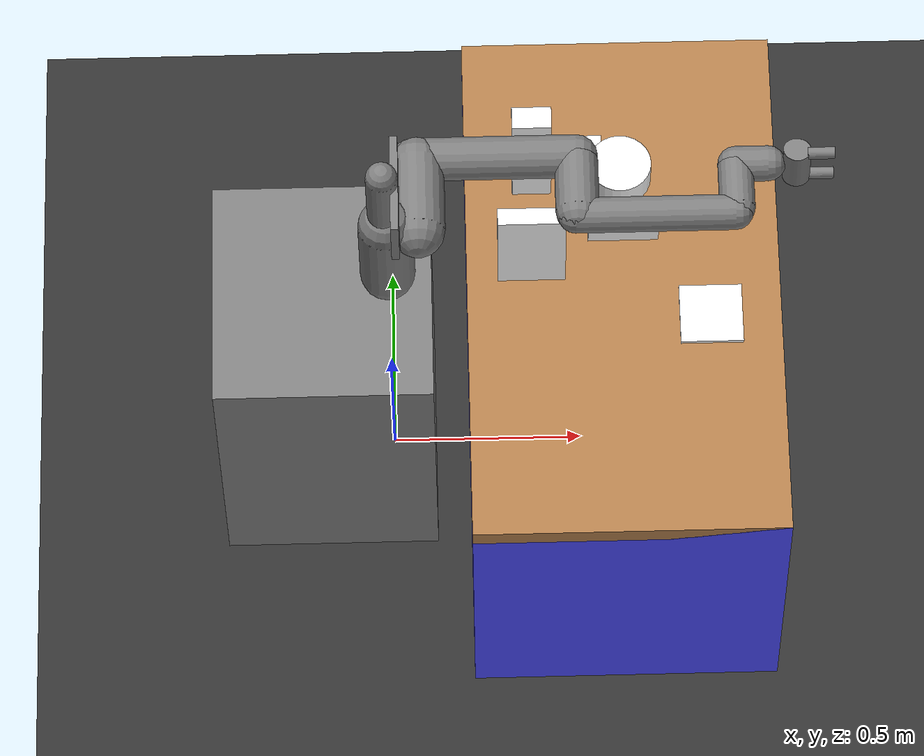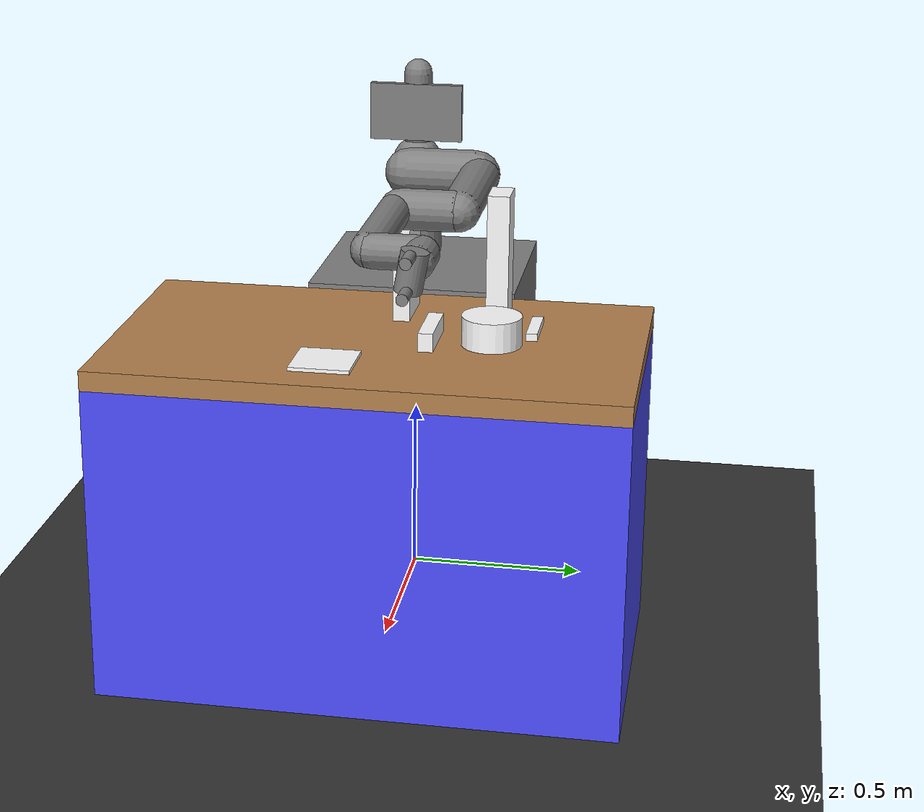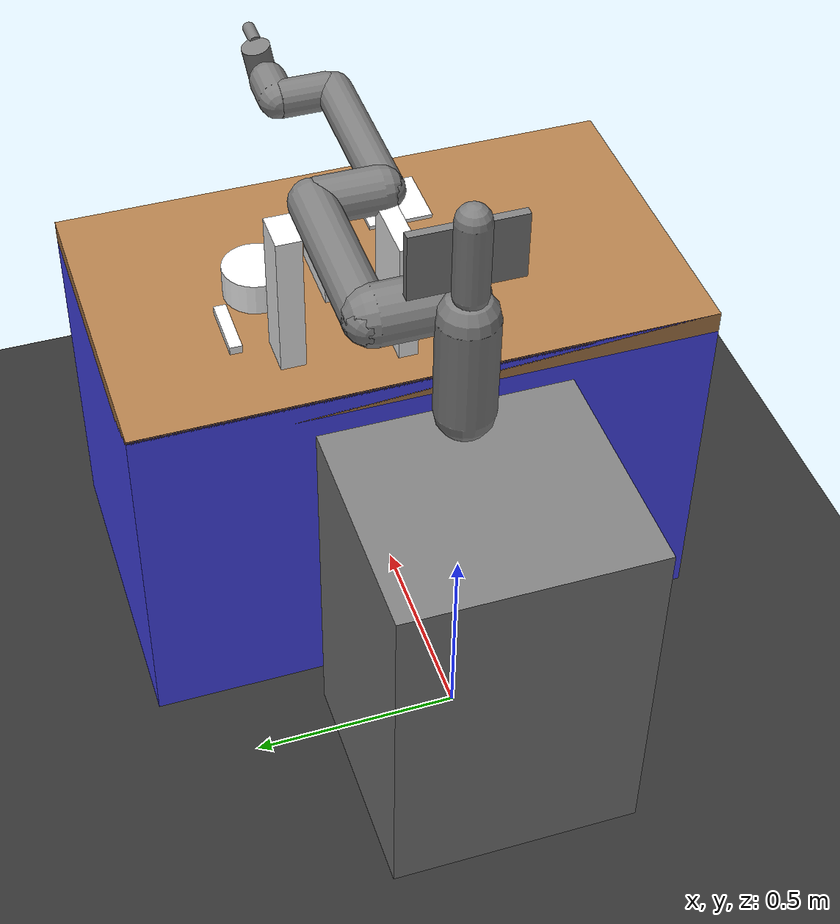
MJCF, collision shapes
<?xml version='1.0' encoding='utf-8'?>
<mujoco model="mesatask_breakfast_me_optimized">
  <compiler angle="radian" coordinate="local"/>
  <option timestep="0.002" gravity="0 0 -9.81" impratio="10" />

  <!-- Higher friction to prevent sliding/spinning; stiffer contacts to prevent sinking into table -->
  <default>
    <geom friction="3.0 0.1 0.01" solref="0.005 1" solimp="0.99 0.999 0.001" condim="4" />
  </default>
  <include file="sawyer-gripper.xml" />

  <asset>
    <mesh name="mesh_0_a430d997_0564_4fae_801b_c01693feeee6" file="../../scene_003/assets/meshes/a430d997-0564-4fae-801b-c01693feeee6.obj" scale="0.093618 0.093601 0.093817" />
    <texture name="tex_0_a430d997_0564_4fae_801b_c01693feeee6__Material_315" type="2d" file="scene_003/assets/textures/a430d997-0564-4fae-801b-c01693feeee6__Material.315.png" />
    <material name="mat_0_a430d997_0564_4fae_801b_c01693feeee6__Material_315_Material_315" texture="tex_0_a430d997_0564_4fae_801b_c01693feeee6__Material_315" rgba="1 1 1 1" specular="0.2" shininess="0.2" />
    <mesh name="mesh_1_1cd24fb39eb340b28b7a0ce00e6d3c6a" file="../../scene_003/assets/meshes/1cd24fb39eb340b28b7a0ce00e6d3c6a.obj" scale="0.022297 0.022666 0.015407" />
    <texture name="tex_1_1cd24fb39eb340b28b7a0ce00e6d3c6a__Material_097" type="2d" file="scene_003/assets/textures/1cd24fb39eb340b28b7a0ce00e6d3c6a__Material.097.png" />
    <material name="mat_1_1cd24fb39eb340b28b7a0ce00e6d3c6a__Material_097_Material_097" texture="tex_1_1cd24fb39eb340b28b7a0ce00e6d3c6a__Material_097" rgba="1 1 1 1" specular="0.2" shininess="0.2" />
    <mesh name="mesh_2_d147f73d5f2249a7ba169a1cf0c21e95" file="../../scene_003/assets/meshes/d147f73d5f2249a7ba169a1cf0c21e95.obj" scale="0.000103 0.000105 0.000100" />
    <texture name="tex_2_d147f73d5f2249a7ba169a1cf0c21e95__Default_003" type="2d" file="scene_003/assets/textures/d147f73d5f2249a7ba169a1cf0c21e95__Default.003.png" />
    <material name="mat_2_d147f73d5f2249a7ba169a1cf0c21e95__Default_003_Default_003" texture="tex_2_d147f73d5f2249a7ba169a1cf0c21e95__Default_003" rgba="1 1 1 1" specular="0.2" shininess="0.2" />
    <mesh name="mesh_3_98c9fc6a50414f68979318c693fe25f8" file="../../scene_003/assets/meshes/98c9fc6a50414f68979318c693fe25f8.obj" scale="0.026422 0.026255 0.027233" />
    <texture name="tex_3_98c9fc6a50414f68979318c693fe25f8__material_0" type="2d" file="scene_003/assets/textures/98c9fc6a50414f68979318c693fe25f8__material_0.png" />
    <material name="mat_3_98c9fc6a50414f68979318c693fe25f8__material_0_material_0" texture="tex_3_98c9fc6a50414f68979318c693fe25f8__material_0" rgba="1 1 1 1" specular="0.2" shininess="0.2" />
    <mesh name="mesh_4_cfd0a5186de3408cbb6fbde0cd6144ce" file="../../scene_003/assets/meshes/cfd0a5186de3408cbb6fbde0cd6144ce.obj" scale="0.943112 0.918831 0.936056" />
    <texture name="tex_4_cfd0a5186de3408cbb6fbde0cd6144ce__Material_004" type="2d" file="scene_003/assets/textures/cfd0a5186de3408cbb6fbde0cd6144ce__Material.004.png" />
    <material name="mat_4_cfd0a5186de3408cbb6fbde0cd6144ce__Material_004_Material_004" texture="tex_4_cfd0a5186de3408cbb6fbde0cd6144ce__Material_004" rgba="1 1 1 1" specular="0.2" shininess="0.2" />
    <mesh name="mesh_5_8ce748cf2f4a410181650550275650b1" file="../../scene_003/assets/meshes/8ce748cf2f4a410181650550275650b1.obj" scale="0.100000 0.100000 0.060570" />
    <texture name="tex_5_8ce748cf2f4a410181650550275650b1__lambert1_011" type="2d" file="scene_003/assets/textures/8ce748cf2f4a410181650550275650b1__lambert1.011.png" />
    <material name="mat_5_8ce748cf2f4a410181650550275650b1__lambert1_011_lambert1_011" texture="tex_5_8ce748cf2f4a410181650550275650b1__lambert1_011" rgba="1 1 1 1" specular="0.2" shininess="0.2" />
  </asset>

  <asset>
      <texture name="T_table" type="cube" file="textures/wood2.png" />
      <texture name="T_floor" type="2d" file="textures/floor2.png" />

      <material name="table_wood" texture="T_table" shininess=".3" specular="0.5" />
      <material name="table_col" rgba="0.3 0.3 1.0 0.5" shininess="0" specular="0" />

      <mesh file="../meshes/table/tablebody.stl" name="tablebody" scale="1 1 1"/>
      <mesh file="../meshes/table/tabletop.stl" name="tabletop" scale="1 1 1"/>
  </asset>

  <worldbody>
    <light name="key_light" pos="1.2 1.0 2.0" dir="-1 -1 -1" directional="true" diffuse="0.95 0.95 0.95" specular="0.25 0.25 0.25" castshadow="true" />
    <light name="fill_light" pos="-1.0 0.6 1.5" dir="1 -0.2 -1" directional="true" diffuse="0.45 0.45 0.45" specular="0.05 0.05 0.05" castshadow="false" />
    <geom name="ground" type="plane" size="2 2 0.1" pos="0 0 -0.001" rgba="0.2 0.2 0.2 1" />
    <body name="tablelink" pos="0.6 0 0.915" euler="0 0 1.5708">
      <geom name="tablelink" material="table_wood" group="1" type="box" size=".7 .4 .027" pos="0 0 -.027" conaffinity="0" contype="0" />
      <geom name="tablebody" material="table_wood" group="1" mesh="tablebody" pos="0 0 -0.65" type="mesh" conaffinity="0" contype="0" />
      <geom name="tabletop" material="table_col" group="4" pos="0.0 0.0 -0.46" size="0.7 0.4 0.46" type="box" conaffinity="1" contype="1" />
    </body>
    <body name="bowl_0_a430d997_0564_4fae_801b_c01693feeee6" pos="0.600 0.300 0.955" quat="1.000000 0.000000 0.000000 0.000000">
      <freejoint/>
      <inertial pos="0 0 0" mass="0.3" diaginertia="0.001 0.001 0.001"/>
      <geom type="mesh" mesh="mesh_0_a430d997_0564_4fae_801b_c01693feeee6" quat="0.707107 0.707107 0.000000 0.000000" material="mat_0_a430d997_0564_4fae_801b_c01693feeee6__Material_315_Material_315" contype="0" conaffinity="0" />
      <geom name="bowl_box" type="cylinder" size="0.08 0.04" rgba="1 1 1 0" contype="1" conaffinity="1" />
    </body>
    <!-- Cereal: scaled to 80%. Collision box matches scaled visual mesh.
         body_z = 0.915 + 0.1528 = 1.0678. -->
    <body name="cereal_0_1cd24fb39eb340b28b7a0ce00e6d3c6a" pos="0.366 0.033 1.068" quat="1.000000 0.000000 0.000000 0.000000">
      <freejoint/>
      <inertial pos="0 0 0" mass="0.4" diaginertia="0.003 0.003 0.003"/>
      <geom type="mesh" mesh="mesh_1_1cd24fb39eb340b28b7a0ce00e6d3c6a" quat="0.707107 0.707107 0.000000 0.000000" material="mat_1_1cd24fb39eb340b28b7a0ce00e6d3c6a__Material_097_Material_097" contype="0" conaffinity="0" />
      <geom name="cereal_box" type="box" size="0.086 0.023 0.153" rgba="1 1 1 0" contype="1" conaffinity="1" friction="8.0 0.005 0.0001" />
    </body>
    <body name="napkin_0_d147f73d5f2249a7ba169a1cf0c21e95" pos="0.820 -0.100 0.920" quat="1.000000 0.000000 0.000000 0.000000">
      <freejoint/>
      <inertial pos="0 0 0" mass="0.05" diaginertia="0.0005 0.0005 0.0005"/>
      <geom type="mesh" mesh="mesh_2_d147f73d5f2249a7ba169a1cf0c21e95" quat="0.707107 0.707107 0.000000 0.000000" material="mat_2_d147f73d5f2249a7ba169a1cf0c21e95__Default_003_Default_003" contype="0" conaffinity="0" />
      <geom name="napkin_box" type="box" size="0.08 0.08 0.005" rgba="1 1 1 0" contype="1" conaffinity="1" />
    </body>
    <body name="spoon_0_98c9fc6a50414f68979318c693fe25f8" pos="0.480 0.400 0.925" quat="1.000000 0.000000 0.000000 0.000000">
      <freejoint/>
      <inertial pos="0 0 0" mass="0.05" diaginertia="0.0005 0.0005 0.0005"/>
      <geom type="mesh" mesh="mesh_3_98c9fc6a50414f68979318c693fe25f8" quat="0.707107 0.707107 0.000000 0.000000" material="mat_3_98c9fc6a50414f68979318c693fe25f8__material_0_material_0" contype="0" conaffinity="0" />
      <geom name="spoon_box" type="box" size="0.075 0.015 0.01" rgba="1 1 1 0" contype="1" conaffinity="1" />
    </body>
    <body name="banana_0_cfd0a5186de3408cbb6fbde0cd6144ce" pos="0.603 0.139 0.940" quat="1.000000 0.000000 0.000000 0.000000">
      <freejoint/>
      <inertial pos="0 0 0" mass="0.12" diaginertia="0.001 0.001 0.001"/>
      <geom type="mesh" mesh="mesh_4_cfd0a5186de3408cbb6fbde0cd6144ce" quat="0.707107 0.707107 0.000000 0.000000" material="mat_4_cfd0a5186de3408cbb6fbde0cd6144ce__Material_004_Material_004" contype="0" conaffinity="0" />
      <geom name="banana_box" type="box" size="0.09 0.02 0.025" rgba="1 1 1 0" contype="1" conaffinity="1" friction="8.0 0.005 0.0001" />
    </body>
    <!-- Milk: scaled to 80%. Collision box matches scaled visual mesh.
         body_z = 0.915 + 0.176 = 1.091. -->
    <body name="milk_carton_0_8ce748cf2f4a410181650550275650b1" pos="0.372 0.289 1.091" quat="1.000000 0.000000 0.000000 0.000000">
      <freejoint/>
      <inertial pos="0 0 -0.03" mass="0.8" diaginertia="0.005 0.005 0.005"/>
      <geom type="mesh" mesh="mesh_5_8ce748cf2f4a410181650550275650b1" quat="0.707107 0.707107 0.000000 0.000000" material="mat_5_8ce748cf2f4a410181650550275650b1__lambert1_011_lambert1_011" contype="0" conaffinity="0" />
      <geom name="milk_box" type="box" size="0.050 0.030 0.176" rgba="1 1 1 0" contype="1" conaffinity="1" friction="8.0 0.005 0.0001" />
    </body>
  </worldbody>
  <!-- Initial robot configuration so the arm doesn't sweep through objects on startup.
       qpos order: right_j0..j6 (7), gripper (2), then 7 freejoint bodies x 7 qpos each (pos+quat) = 42 -->
  <keyframe>
    <key name="home" qpos="0 -1.1775 0 2.1761 0 0.5663 3.3124 0 0
      0.6 0.3 0.955 1 0 0 0
      0.365552 0.0333248 1.068 1 0 0 0
      0.82 -0.1 0.92 1 0 0 0
      0.48 0.4 0.925 1 0 0 0
      0.603376 0.139231 0.94 1 0 0 0
      0.37233 0.28934 1.091 1 0 0 0"/>
  </keyframe>

  <visual>
    <global offwidth="1280" offheight="960" />
    <quality shadowsize="4096" />
    <headlight ambient="0.30 0.30 0.30" diffuse="0.75 0.75 0.75" specular="0.15 0.15 0.15" />
    <map znear="0.01" zfar="50" />
  </visual>
</mujoco>

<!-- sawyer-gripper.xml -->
<mujoco model="sawyer">
  <compiler angle="radian" meshdir="sawyer/assets" autolimits="true"/>

  <option integrator="implicitfast"/>

  <default>
    <default class="sawyer">
      <material specular="0.5" shininess="0.25"/>
      <joint axis="0 0 1"/>
      <general dyntype="none" biastype="affine"/>
      <default class="visual">
        <geom group="2" type="mesh" contype="0" conaffinity="0"/>
      </default>
      <default class="collision">
        <geom group="3" type="capsule" rgba="0.5 0.5 0.5 1"/>
        <default class="eef_collision">
          <geom type="cylinder"/>
        </default>
      </default>
      <site size="0.001" rgba="0.5 0.5 0.5 0.3" group="4"/>

      <default class="large_joint">
        <joint frictionloss="0.3" armature="1" damping="0.1"/>
        <general gainprm="800" biasprm="0 -800 -80" forcerange="-200 200"/>
      </default>
      <default class="medium_joint">
        <joint frictionloss="0.3" armature="1" damping="0.1"/>
        <general gainprm="800" biasprm="0 -800 -80" forcerange="-100 100"/>
      </default>
      <default class="small_joint">
        <joint frictionloss="0.1" armature="1" damping="0.1"/>
        <general gainprm="500" biasprm="0 -500 -50" forcerange="-30 30"/>
      </default>
      <default class="gripper_joint">
        <joint frictionloss="0.1" armature="0.5" damping="0.5"/>
        <general gainprm="1000" biasprm="0 -200 -20" forcerange="-50 50"/>
      </default>
    </default>
  </default>

  <asset>
    <material class="sawyer" name="red" rgba="0.5 0.1 0.1 1"/>
    <material class="sawyer" name="black" rgba="0.2 0.2 0.2 1"/>
    <material class="sawyer" name="white" rgba="1 1 1 1"/>
    <material class="sawyer" name="off_white" rgba="0.792157 0.819608 0.929412 1"/>
    <material class="sawyer" name="Mtl3" rgba="0.168627 0.152941 0.141176 1"/>
    <material class="sawyer" name="Mtl4" rgba="1 0.403922 0.121569 1"/>
    <material class="sawyer" name="Mtl7" rgba="0.250980 0.250980 0.250980 1"/>
    <material class="sawyer" name="dark_black" specular="0.0" shininess="0.25" rgba="0 0 0 1"/>
    <material class="sawyer" name="Mtl5.001" rgba="0.870588 0.309804 0.086275 1"/>
    <material class="sawyer" name="Mtl7.001" rgba="0.698039 0.698039 0.698039 1"/>
    <material class="sawyer" name="Mtl5.002" rgba="0.105882 0.105882 0.105882 1"/>
    <material class="sawyer" name="Mtl6.002" rgba="0.749020 0.749020 0.749020 1"/>
    <material class="sawyer" name="Mtl4_001" rgba="0.866667 0.905882 1 1"/>
    <material class="sawyer" name="Mtl5_001" rgba="0.501961 0.501961 0.501961 1"/>

    <mesh file="pedestal.obj"/>
    <mesh file="base_0.obj"/>
    <mesh file="base_1.obj"/>
    <mesh file="l0_0.obj"/>
    <mesh file="l0_1.obj"/>
    <mesh file="l0_2.obj"/>
    <mesh file="l0_3.obj"/>
    <mesh file="l0_4.obj"/>
    <mesh file="l0_5.obj"/>
    <mesh file="l0_6.obj"/>
    <mesh file="l1_0.obj"/>
    <mesh file="l1_1.obj"/>
    <mesh file="l1_2.obj"/>
    <mesh file="l2_0.obj"/>
    <mesh file="l2_1.obj"/>
    <mesh file="l2_2.obj"/>
    <mesh file="l2_3.obj"/>
    <mesh file="l2_4.obj"/>
    <mesh file="l3_0.obj"/>
    <mesh file="l3_1.obj"/>
    <mesh file="l3_2.obj"/>
    <mesh file="l3_3.obj"/>
    <mesh file="l4_0.obj"/>
    <mesh file="l4_1.obj"/>
    <mesh file="l4_2.obj"/>
    <mesh file="l4_3.obj"/>
    <mesh file="l4_4.obj"/>
    <mesh file="l4_5.obj"/>
    <mesh file="l4_6.obj"/>
    <mesh file="l4_7.obj"/>
    <mesh file="l5_0.obj"/>
    <mesh file="l5_1.obj"/>
    <mesh file="l5_2.obj"/>
    <mesh file="l5_3.obj"/>
    <mesh file="l5_4.obj"/>
    <mesh file="l6_0.obj"/>
    <mesh file="l6_1.obj"/>
    <mesh file="l6_2.obj"/>
    <mesh file="l6_3.obj"/>
    <mesh file="l6_4.obj"/>
    <mesh file="l6_5.obj"/>
    <mesh file="head_0.obj"/>
    <mesh file="head_2.obj"/>
    <mesh file="head_3.obj"/>
    <mesh file="head_5.obj"/>
    <mesh file="head_6.obj"/>
    <mesh file="head_7.obj"/>
    <mesh file="head_8.obj"/>
    <mesh file="head_9.obj"/>
    <mesh file="gripper_body.obj"/>
    <mesh file="gripper_finger_narrow.obj"/>
  </asset>

  <worldbody>
    <light name="top" pos="0 0 2" mode="trackcom"/>
    <body name="pedestal">
      <geom mesh="pedestal" material="black" class="visual"/>
      <geom class="collision" type="box" pos="-0.17 0 0.45" size="0.28 0.3 0.45"/>
      <body name="base" childclass="sawyer" pos="0 0 0.92">
        <inertial mass="2.0687" pos="-0.0006241 -2.8025E-05 0.065404"
          fullinertia="0.0067599 0.0067877 0.0074031 -4.2024E-05 -6.1904E-07 1.5888E-05"/>
        <geom mesh="base_0" material="black" class="visual"/>
        <geom mesh="base_1" material="red" class="visual"/>
        <body name="right_l0" pos="0 0 0.08">
          <inertial mass="5.3213" pos="0.0243645 0.0109688 0.143631" quat="0.894821 0.0089945 -0.17028 0.412576"
            diaginertia="0.0651599 0.0510954 0.0186221"/>
          <joint name="right_j0" class="large_joint" range="-3.0503 3.0503"/>
          <geom mesh="l0_0" material="Mtl7" class="visual"/>
          <geom mesh="l0_1" material="off_white" class="visual"/>
          <geom mesh="l0_2" material="red" class="visual"/>
          <geom mesh="l0_3" material="Mtl4" class="visual"/>
          <geom mesh="l0_4" material="Mtl3" class="visual"/>
          <geom mesh="l0_5" material="white" class="visual"/>
          <geom mesh="l0_6" material="black" class="visual"/>
          <geom class="collision" fromto="0 0 -0.005 0 0 0.25" size="0.07"/>
          <body name="head" pos="0 0 0.2965">
            <inertial mass="1.5795" pos="0.00532226 -2.65473e-05 0.1021"
              quat="0.999993 7.08384e-05 -0.00359812 -0.000626267" diaginertia="0.0118334 0.00827097 0.00496582"/>
            <geom mesh="head_0" material="black" class="visual"/>
            <geom mesh="head_2" material="off_white" class="visual"/>
            <geom mesh="head_3" material="Mtl7" class="visual"/>
            <geom mesh="head_5" material="black" class="visual"/>
            <geom mesh="head_6" material="white" class="visual"/>
            <geom mesh="head_7" material="dark_black" class="visual"/>
            <geom mesh="head_8" material="red" class="visual"/>
            <geom mesh="head_9" material="Mtl5.001" class="visual"/>
            <geom class="collision" fromto="-0.005 0 0.02 -0.005 0 0.205" size="0.04"/>
            <geom class="collision" type="box" pos="0.025 0 0.1" size="0.01 0.13 0.08"/>
          </body>
          <body name="right_l1" pos="0.081 0.05 0.237" quat="1 -1 1 1">
            <inertial mass="4.505" pos="-0.0030849 -0.026811 0.092521" quat="0.424888 0.891987 0.132364 -0.0794294"
              diaginertia="0.0224339 0.0221624 0.00970971"/>
            <joint name="right_j1" class="large_joint" range="-3.8095 2.2736"/>
            <geom mesh="l1_0" material="black" class="visual"/>
            <geom mesh="l1_1" material="red" class="visual"/>
            <geom mesh="l1_2" material="white" class="visual"/>
            <geom class="collision" fromto="0 0 -0.06 0 0 0.13" size="0.068"/>
            <body name="right_l2" pos="0 -0.14 0.1425" quat="1 1 0 0">
              <inertial mass="1.745" pos="-0.00016044 -0.014967 0.13582" quat="0.707831 -0.0524761 0.0516006 0.702537"
                diaginertia="0.0257928 0.025506 0.00292516"/>
              <joint name="right_j2" class="medium_joint" range="-3.0426 3.0426"/>
              <geom mesh="l2_0" material="off_white" class="visual"/>
              <geom mesh="l2_1" material="Mtl5.002" class="visual"/>
              <geom mesh="l2_2" material="white" class="visual"/>
              <geom mesh="l2_3" material="black" class="visual"/>
              <geom mesh="l2_4" material="red" class="visual"/>
              <geom class="collision" fromto="0 0 -0.15 0 0 0.26" size="0.055"/>
              <body name="right_l3" pos="0 -0.042 0.26" quat="1 -1 0 0">
                <inertial mass="2.5097" pos="-0.0048135 -0.0281 -0.084154" quat="0.902999 0.385391 -0.0880901 0.168247"
                  diaginertia="0.0102404 0.0096997 0.00369622"/>
                <joint name="right_j3" class="medium_joint" range="-3.0439 3.0439"/>
                <geom mesh="l3_0" material="off_white" class="visual"/>
                <geom mesh="l3_1" material="red" class="visual"/>
                <geom mesh="l3_2" material="white" class="visual"/>
                <geom mesh="l3_3" material="black" class="visual"/>
                <geom class="collision" fromto="0 0 -0.115 0 0 0.03" size="0.055"/>
                <body name="right_l4" pos="0 -0.125 -0.1265" quat="1 1 0 0">
                  <inertial mass="1.1136" pos="-0.00188917 0.00689948 0.134095"
                    quat="0.803247 0.031244 -0.0298409 0.594077" diaginertia="0.0136555 0.0135498 0.00127385"/>
                  <joint name="right_j4" class="small_joint" range="-2.9761 2.9761"/>
                  <geom mesh="l4_0" material="Mtl7" class="visual"/>
                  <geom mesh="l4_1" material="black" class="visual"/>
                  <geom mesh="l4_2" material="Mtl6.002" class="visual"/>
                  <geom mesh="l4_3" material="white" class="visual"/>
                  <geom mesh="l4_4" material="off_white" class="visual"/>
                  <geom mesh="l4_5" material="dark_black" class="visual"/>
                  <geom mesh="l4_6" material="red" class="visual"/>
                  <geom mesh="l4_7" material="black" class="visual"/>
                  <geom class="collision" fromto="0 0 -0.13 0 0 0.27" size="0.045"/>
                  <body name="right_l5" pos="0 0.031 0.275" quat="1 -1 0 0">
                    <inertial mass="1.5625" pos="0.0061133 -0.023697 0.076416" quat="0.404076 0.9135 0.0473125 0.00158335"
                      diaginertia="0.00474131 0.00422857 0.00190672"/>
                    <joint name="right_j5" class="small_joint" range="-2.9761 2.9761"/>
                    <geom mesh="l5_0" material="Mtl5_001" class="visual"/>
                    <geom mesh="l5_1" material="Mtl4_001" class="visual"/>
                    <geom mesh="l5_2" material="white" class="visual"/>
                    <geom mesh="l5_3" material="red" class="visual"/>
                    <geom mesh="l5_4" material="black" class="visual"/>
                    <geom fromto="0 0 -0.02 0 0 0.1" size="0.045" class="collision"/>
                    <geom fromto="0 0 0.105 0 -0.082 0.105" size="0.045" class="collision"/>
                    <body name="right_l6" pos="0 -0.11 0.1053" quat="0.0616248 0.06163 -0.704416 0.704416">
                      <inertial mass="0.3292" pos="-8.0726e-06 0.0085838 -0.0049566"
                        quat="0.479044 0.515636 -0.513069 0.491321" diaginertia="0.000360268 0.000311078 0.000214984"/>
                      <joint name="right_j6" class="small_joint" range="-4.7124 4.7124"/>
                      <geom mesh="l6_0" material="Mtl4" class="visual"/>
                      <geom mesh="l6_1" material="white" class="visual"/>
                      <geom mesh="l6_2" material="red" class="visual"/>
                      <geom mesh="l6_3" material="black" class="visual"/>
                      <geom mesh="l6_4" material="black" class="visual"/>
                      <geom mesh="l6_5" material="black" class="visual"/>
                      <site name="attachment_site" pos="0 0 0.0245" quat="0 0 0 1"/>
                      <body name="gripper_body" pos="0 0 0.02" quat="0.7071068 0 0 0.7071068">
                        <site name="end_effector" pos="0 0 0.0545" quat="0 0 0 1"/>
                        <camera name="wrist_camera" pos="0.09 0 0.02" xyaxes="0 1 0 0.774 0 0.633" fovy="85"/>
                        <inertial mass="0.3292" pos="0 0 0" quat="0 0 0 1" diaginertia="0.0003 0.0003 0.0003"/>
                        <geom mesh="gripper_body" material="red" class="visual"/>
                        <geom class="eef_collision" pos="0 0 0.024" quat="0.7071 0.7071 0 0" size="0.035 0.052" contype="0" conaffinity="0"/>
                        <body name="gripper_finger_right" pos="0.002 0.028 0.045" quat="0 0 0 1">
                          <inertial mass="0.0907185" pos="0 0 0" quat="0 0 0 1" diaginertia="0.0003 0.0003 0.0003"/>
                          <geom mesh="gripper_finger_narrow" material="black" class="visual"/>
                          <joint name="gripper_right_close" type="slide" class="gripper_joint" pos="0 0 0" axis="0 1 0" range="0 0.035"/>
                          <geom class="eef_collision" pos="0.003 -0.0165 0.039" size="0.015 0.034" friction="5.0 0.1 0.01" contype="1" conaffinity="1"/>
                        </body>
                        <body name="gripper_finger_left" pos="0.0035 -0.028 0.045" quat="1 0 0 0">
                          <inertial mass="0.0907185" pos="0 0 0" quat="0 0 0 1" diaginertia="0.0000001 0.0000001 0.0000001"/>
                          <geom mesh="gripper_finger_narrow" material="black" class="visual"/>
                          <geom class="eef_collision" pos="0.003 -0.0165 0.039" size="0.015 0.034" friction="5.0 0.1 0.01" contype="1" conaffinity="1"/>
                          <joint name="gripper_left_close" type="slide" class="gripper_joint" pos="0 0 0" axis="0 1 0" range="0 0.035"/>
                        </body>
                      </body>
                    </body>
                  </body>
                </body>
              </body>
            </body>
          </body>
        </body>
      </body>
    </body>
  </worldbody>

  <contact>
    <exclude body1="base" body2="right_l0"/>
  </contact>

  <actuator>
    <general name="a0" joint="right_j0" class="large_joint" ctrlrange="-3.0503 3.0503"/>
    <general name="a1" joint="right_j1" class="large_joint" ctrlrange="-3.8095 2.2736"/>
    <general name="a2" joint="right_j2" class="medium_joint" ctrlrange="-3.0426 3.0426"/>
    <general name="a3" joint="right_j3" class="medium_joint" ctrlrange="-3.0439 3.0439"/>
    <general name="a4" joint="right_j4" class="small_joint" ctrlrange="-2.9761 2.9761"/>
    <general name="a5" joint="right_j5" class="small_joint" ctrlrange="-2.9761 2.9761"/>
    <general name="a6" joint="right_j6" class="small_joint" ctrlrange="-4.7124 4.7124"/>
    <general name="figer_right" joint="gripper_right_close" class="gripper_joint" ctrlrange="0 0.035"/>
    <general name="figer_left" joint="gripper_left_close" class="gripper_joint" ctrlrange="0 0.035"/>
  </actuator>

</mujoco>
